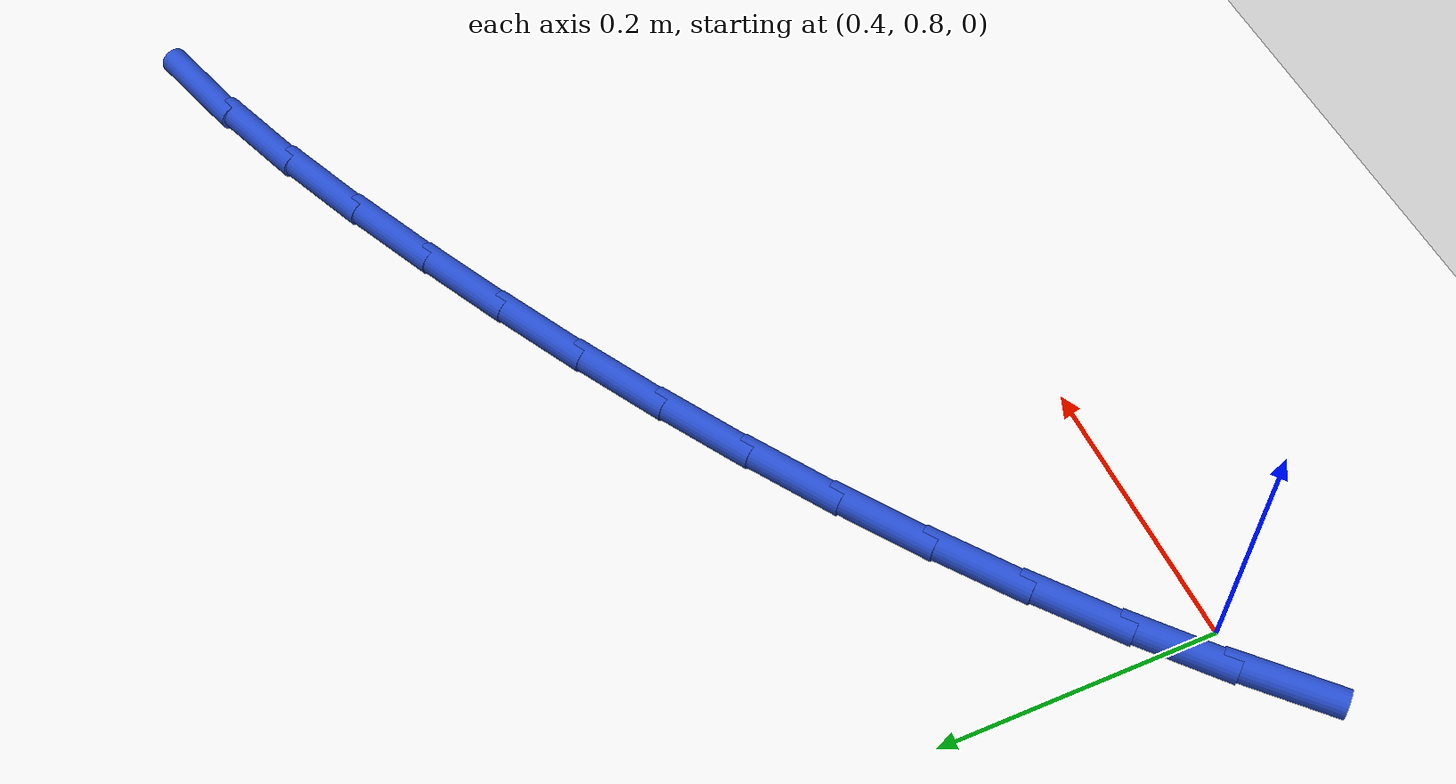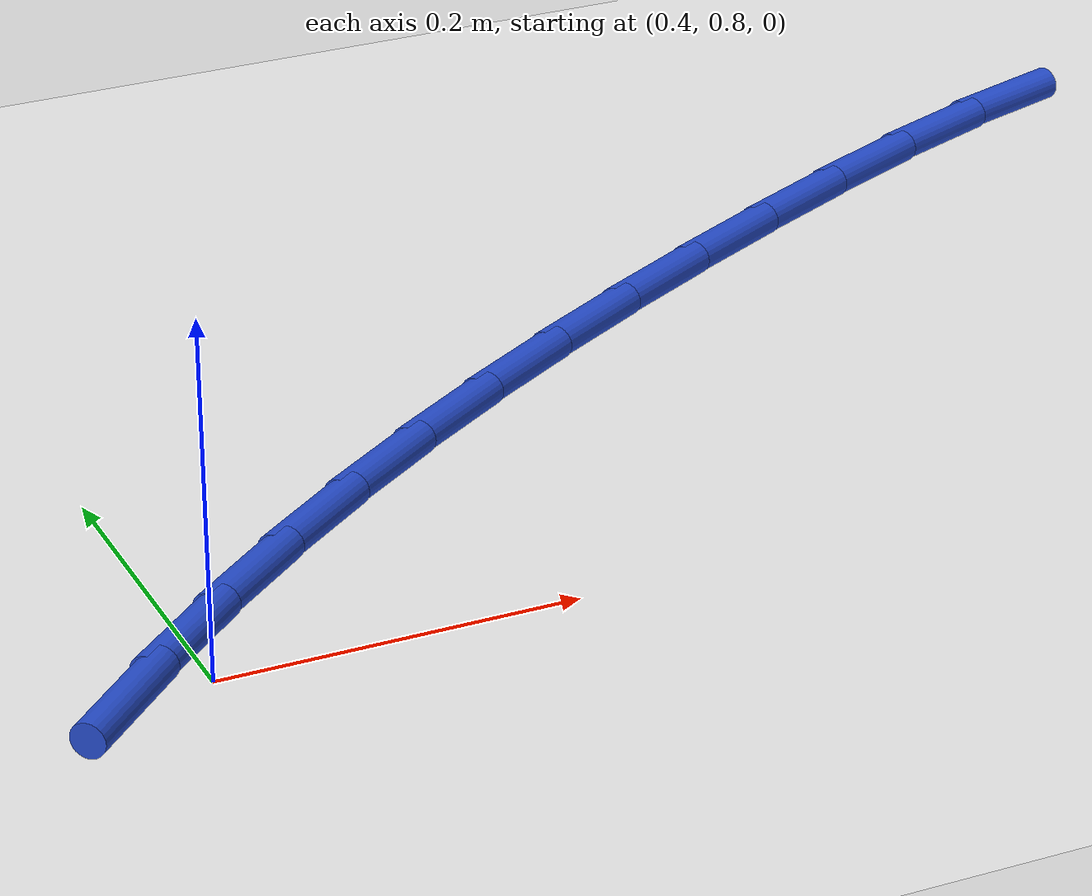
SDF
<sdf version="1.6">
 <world name="default">
  <model name="ground_plane">
   <static>1</static>
   <link name="link">
    <collision name="collision">
     <geometry><plane><normal>0 0 1</normal><size>100 100</size></plane></geometry>
     <surface><friction><ode><mu>100</mu><mu2>50</mu2></ode></friction></surface>
    </collision>
    <visual name="visual">
     <cast_shadows>0</cast_shadows>
     <geometry><plane><normal>0 0 1</normal><size>100 100</size></plane></geometry>
     <material>
      <script><uri>file://media/materials/scripts/gazebo.material</uri><name>Gazebo/WhiteGlow</name></script>
     </material>
    </visual>
   </link>
  </model>
  <model name="line">
   <link name="link_13">
    <pose>0.3493480664261859 0.7847752158741776 0.01 0 1.57 0.7679733708110666</pose>
    <collision name="collision">
     <geometry><cylinder><radius>0.01</radius><length>0.08</length></cylinder></geometry>
    </collision>
    <visual name="visual">
     <material>
      <script><name>Gazebo/Blue</name><uri>file://media/materials/scripts/gazebo.material</uri></script>
     </material>
     <geometry><cylinder><radius>0.01</radius><length>0.08</length></cylinder></geometry>
    </visual>
   </link>
   <link name="link_14">
    <pose>0.3976731875454884 0.8314449045892718 0.01 0 1.57 0.7244084665810567</pose>
    <collision name="collision">
     <geometry><cylinder><radius>0.01</radius><length>0.08</length></cylinder></geometry>
    </collision>
    <visual name="visual">
     <material>
      <script><name>Gazebo/Blue</name><uri>file://media/materials/scripts/gazebo.material</uri></script>
     </material>
     <geometry><cylinder><radius>0.01</radius><length>0.08</length></cylinder></geometry>
    </visual>
   </link>
   <link name="link_15">
    <pose>0.44821328347799594 0.876167729173926 0.01 0 1.57 0.6837108243839433</pose>
    <collision name="collision">
     <geometry><cylinder><radius>0.01</radius><length>0.08</length></cylinder></geometry>
    </collision>
    <visual name="visual">
     <material>
      <script><name>Gazebo/Blue</name><uri>file://media/materials/scripts/gazebo.material</uri></script>
     </material>
     <geometry><cylinder><radius>0.01</radius><length>0.08</length></cylinder></geometry>
    </visual>
   </link>
   <link name="link_16">
    <pose>0.5008151129929873 0.9190286115532842 0.01 0 1.57 0.645858267024378</pose>
    <collision name="collision">
     <geometry><cylinder><radius>0.01</radius><length>0.08</length></cylinder></geometry>
    </collision>
    <visual name="visual">
     <material>
      <script><name>Gazebo/Blue</name><uri>file://media/materials/scripts/gazebo.material</uri></script>
     </material>
     <geometry><cylinder><radius>0.01</radius><length>0.08</length></cylinder></geometry>
    </visual>
   </link>
   <link name="link_17">
    <pose>0.5553254348597416 0.9601124736524906 0.01 0 1.57 0.6107958912282518</pose>
    <collision name="collision">
     <geometry><cylinder><radius>0.01</radius><length>0.08</length></cylinder></geometry>
    </collision>
    <visual name="visual">
     <material>
      <script><name>Gazebo/Blue</name><uri>file://media/materials/scripts/gazebo.material</uri></script>
     </material>
     <geometry><cylinder><radius>0.01</radius><length>0.08</length></cylinder></geometry>
    </visual>
   </link>
   <link name="link_18">
    <pose>0.611591007847538 0.9995042373966897 0.01 0 1.57 0.578445622652371</pose>
    <collision name="collision">
     <geometry><cylinder><radius>0.01</radius><length>0.08</length></cylinder></geometry>
    </collision>
    <visual name="visual">
     <material>
      <script><name>Gazebo/Blue</name><uri>file://media/materials/scripts/gazebo.material</uri></script>
     </material>
     <geometry><cylinder><radius>0.01</radius><length>0.08</length></cylinder></geometry>
    </visual>
   </link>
   <link name="link_19">
    <pose>0.6694585907256554 1.037288824711026 0.01 0 1.57 0.548714496518299</pose>
    <collision name="collision">
     <geometry><cylinder><radius>0.01</radius><length>0.08</length></cylinder></geometry>
    </collision>
    <visual name="visual">
     <material>
      <script><name>Gazebo/Blue</name><uri>file://media/materials/scripts/gazebo.material</uri></script>
     </material>
     <geometry><cylinder><radius>0.01</radius><length>0.08</length></cylinder></geometry>
    </visual>
   </link>
   <link name="link_20">
    <pose>0.7287749422633731 1.0735511575206438 0.01 0 1.57 0.521501548897535</pose>
    <collision name="collision">
     <geometry><cylinder><radius>0.01</radius><length>0.08</length></cylinder></geometry>
    </collision>
    <visual name="visual">
     <material>
      <script><name>Gazebo/Blue</name><uri>file://media/materials/scripts/gazebo.material</uri></script>
     </material>
     <geometry><cylinder><radius>0.01</radius><length>0.08</length></cylinder></geometry>
    </visual>
   </link>
   <link name="link_21">
    <pose>0.7893868212299697 1.108376157750687 0.01 0 1.57 0.4967033659732629</pose>
    <collision name="collision">
     <geometry><cylinder><radius>0.01</radius><length>0.08</length></cylinder></geometry>
    </collision>
    <visual name="visual">
     <material>
      <script><name>Gazebo/Blue</name><uri>file://media/materials/scripts/gazebo.material</uri></script>
     </material>
     <geometry><cylinder><radius>0.01</radius><length>0.08</length></cylinder></geometry>
    </visual>
   </link>
   <link name="link_22">
    <pose>0.8511409863947249 1.1418487473263006 0.01 0 1.57 0.4742184339702133</pose>
    <collision name="collision">
     <geometry><cylinder><radius>0.01</radius><length>0.08</length></cylinder></geometry>
    </collision>
    <visual name="visual">
     <material>
      <script><name>Gazebo/Blue</name><uri>file://media/materials/scripts/gazebo.material</uri></script>
     </material>
     <geometry><cylinder><radius>0.01</radius><length>0.08</length></cylinder></geometry>
    </visual>
   </link>
   <link name="link_23">
    <pose>0.9138841965269174 1.1740538481726284 0.01 0 1.57 0.45163873809414407</pose>
    <collision name="collision">
     <geometry><cylinder><radius>0.01</radius><length>0.08</length></cylinder></geometry>
    </collision>
    <visual name="visual">
     <material>
      <script><name>Gazebo/Blue</name><uri>file://media/materials/scripts/gazebo.material</uri></script>
     </material>
     <geometry><cylinder><radius>0.01</radius><length>0.08</length></cylinder></geometry>
    </visual>
   </link>
   <link name="link_24">
    <pose>0.9774709179487903 1.204898354693336 0.01 0 1.57 0.41920871095102585</pose>
    <collision name="collision">
     <geometry><cylinder><radius>0.01</radius><length>0.08</length></cylinder></geometry>
    </collision>
    <visual name="visual">
     <material>
      <script><name>Gazebo/Blue</name><uri>file://media/materials/scripts/gazebo.material</uri></script>
     </material>
     <geometry><cylinder><radius>0.01</radius><length>0.08</length></cylinder></geometry>
    </visual>
   </link>
   <link name="link_25">
    <pose>1.04178721882186 1.233559228309944 0.01 0 1.57 0.37373305597907197</pose>
    <collision name="collision">
     <geometry><cylinder><radius>0.01</radius><length>0.08</length></cylinder></geometry>
    </collision>
    <visual name="visual">
     <material>
      <script><name>Gazebo/Blue</name><uri>file://media/materials/scripts/gazebo.material</uri></script>
     </material>
     <geometry><cylinder><radius>0.01</radius><length>0.08</length></cylinder></geometry>
    </visual>
   </link>
   <link name="link_26">
    <pose>1.1067272654779952 1.259026380519949 0.01 0 1.57 0.3140868857617962</pose>
    <collision name="collision">
     <geometry><cylinder><radius>0.01</radius><length>0.08</length></cylinder></geometry>
    </collision>
    <visual name="visual">
     <material>
      <script><name>Gazebo/Blue</name><uri>file://media/materials/scripts/gazebo.material</uri></script>
     </material>
     <geometry><cylinder><radius>0.01</radius><length>0.08</length></cylinder></geometry>
    </visual>
   </link>
  </model>
 </world>
</sdf>
